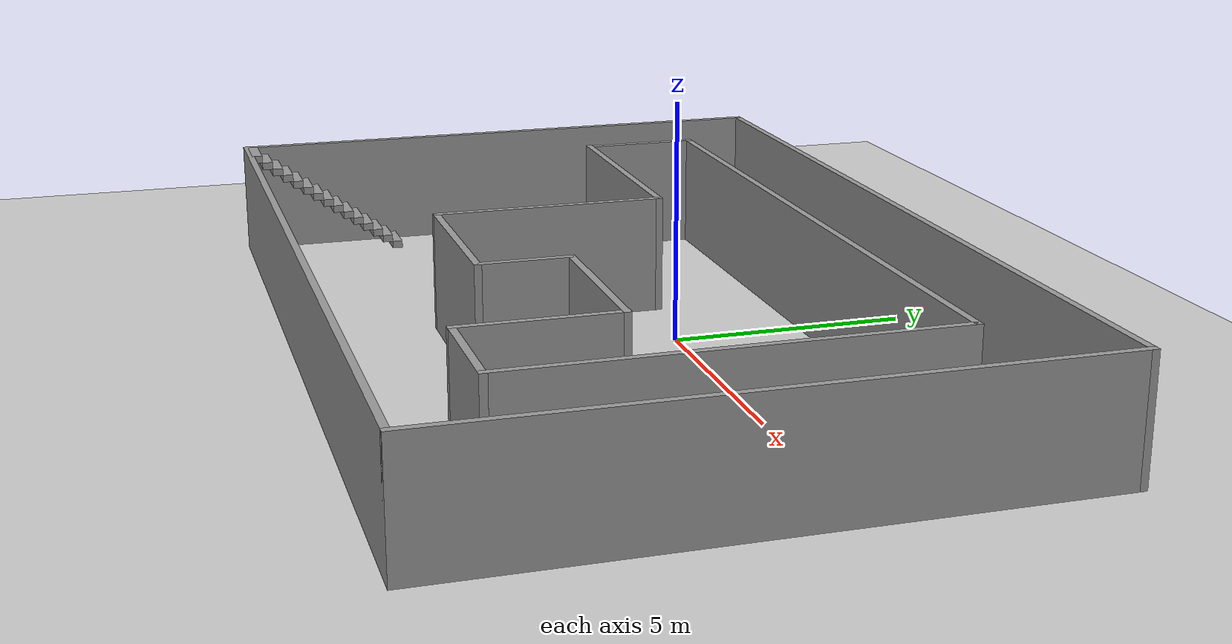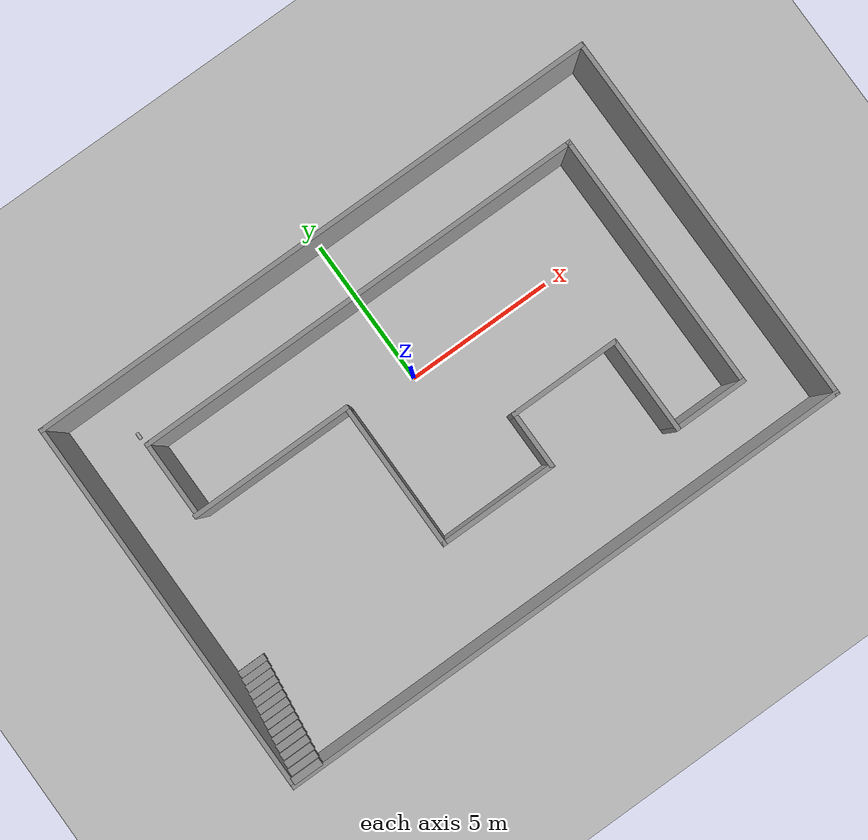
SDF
<sdf version="1.6">
 <world name="default">
  <light name="sun" type="directional">
   <pose>0 0 10 0 -0 0</pose>
   <diffuse>0.8 0.8 0.8 1</diffuse>
   <specular>0.1 0.1 0.1 1</specular>
   <attenuation>
    <range>1000</range>
    <constant>0.9</constant>
    <linear>0.01</linear>
    <quadratic>0.001</quadratic>
   </attenuation>
   <direction>-0.5 0.5 -1</direction>
  </light>
  <model name="ground_plane">
   <static>1</static>
   <link name="link">
    <collision name="collision">
     <geometry><plane><normal>0 0 1</normal><size>100 100</size></plane></geometry>
     <surface><friction><ode><mu>100</mu><mu2>50</mu2></ode></friction></surface>
    </collision>
    <visual name="visual">
     <cast_shadows>0</cast_shadows>
     <geometry><plane><normal>0 0 1</normal><size>100 100</size></plane></geometry>
     <material>
      <script><uri>file://media/materials/scripts/gazebo.material</uri><name>Gazebo/Grey</name></script>
     </material>
    </visual>
   </link>
  </model>
  <gravity>0 0 -9.8</gravity>
  <magnetic_field>6e-06 2.3e-05 -4.2e-05</magnetic_field>
  <atmosphere type="adiabatic"/>
  <physics name="default_physics" default="0" type="ode">
   <max_step_size>0.001</max_step_size>
   <real_time_factor>1</real_time_factor>
   <real_time_update_rate>1000</real_time_update_rate>
  </physics>
  <scene><ambient>0.4 0.4 0.4 1</ambient><background>0.7 0.7 0.7 1</background><shadows>1</shadows></scene>
  <spherical_coordinates>
   <surface_model>EARTH_WGS84</surface_model>
   <latitude_deg>0</latitude_deg>
   <longitude_deg>0</longitude_deg>
   <elevation>0</elevation>
   <heading_deg>0</heading_deg>
  </spherical_coordinates>
  <model name="cloister">
   <pose>-0.021965 -1.3617 0 0 -0 0</pose>
   <link name="Stairs_1">
    <visual name="Stairs_1_Visual_0">
     <pose>-9.13664 -2.89839 0.083333 0 -0 0</pose>
     <geometry><box><size>1 0.233333 0.166667</size></box></geometry>
     <material>
      <script><uri>file://media/materials/scripts/gazebo.material</uri><name>Gazebo/Grey</name></script>
      <ambient>1 1 1 1</ambient>
     </material>
    </visual>
    <collision name="Stairs_1_Collision_0">
     <geometry><box><size>1 0.233333 0.166667</size></box></geometry>
     <pose>-9.13664 -2.89839 0.083333 0 -0 0</pose>
    </collision>
    <visual name="Stairs_1_Visual_1">
     <pose>-9.13664 -3.13172 0.25 0 -0 0</pose>
     <geometry><box><size>1 0.233333 0.166667</size></box></geometry>
     <material>
      <script><uri>file://media/materials/scripts/gazebo.material</uri><name>Gazebo/Grey</name></script>
      <ambient>1 1 1 1</ambient>
     </material>
    </visual>
    <collision name="Stairs_1_Collision_1">
     <geometry><box><size>1 0.233333 0.166667</size></box></geometry>
     <pose>-9.13664 -3.13172 0.25 0 -0 0</pose>
    </collision>
    <visual name="Stairs_1_Visual_2">
     <pose>-9.13664 -3.36505 0.416667 0 -0 0</pose>
     <geometry><box><size>1 0.233333 0.166667</size></box></geometry>
     <material>
      <script><uri>file://media/materials/scripts/gazebo.material</uri><name>Gazebo/Grey</name></script>
      <ambient>1 1 1 1</ambient>
     </material>
    </visual>
    <collision name="Stairs_1_Collision_2">
     <geometry><box><size>1 0.233333 0.166667</size></box></geometry>
     <pose>-9.13664 -3.36505 0.416667 0 -0 0</pose>
    </collision>
    <visual name="Stairs_1_Visual_3">
     <pose>-9.13664 -3.59839 0.583333 0 -0 0</pose>
     <geometry><box><size>1 0.233333 0.166667</size></box></geometry>
     <material>
      <script><uri>file://media/materials/scripts/gazebo.material</uri><name>Gazebo/Grey</name></script>
      <ambient>1 1 1 1</ambient>
     </material>
    </visual>
    <collision name="Stairs_1_Collision_3">
     <geometry><box><size>1 0.233333 0.166667</size></box></geometry>
     <pose>-9.13664 -3.59839 0.583333 0 -0 0</pose>
    </collision>
    <visual name="Stairs_1_Visual_4">
     <pose>-9.13664 -3.83172 0.75 0 -0 0</pose>
     <geometry><box><size>1 0.233333 0.166667</size></box></geometry>
     <material>
      <script><uri>file://media/materials/scripts/gazebo.material</uri><name>Gazebo/Grey</name></script>
      <ambient>1 1 1 1</ambient>
     </material>
    </visual>
    <collision name="Stairs_1_Collision_4">
     <geometry><box><size>1 0.233333 0.166667</size></box></geometry>
     <pose>-9.13664 -3.83172 0.75 0 -0 0</pose>
    </collision>
    <visual name="Stairs_1_Visual_5">
     <pose>-9.13664 -4.06506 0.916667 0 -0 0</pose>
     <geometry><box><size>1 0.233333 0.166667</size></box></geometry>
     <material>
      <script><uri>file://media/materials/scripts/gazebo.material</uri><name>Gazebo/Grey</name></script>
      <ambient>1 1 1 1</ambient>
     </material>
    </visual>
    <collision name="Stairs_1_Collision_5">
     <geometry><box><size>1 0.233333 0.166667</size></box></geometry>
     <pose>-9.13664 -4.06506 0.916667 0 -0 0</pose>
    </collision>
    <visual name="Stairs_1_Visual_6">
     <pose>-9.13664 -4.29839 1.08333 0 -0 0</pose>
     <geometry><box><size>1 0.233333 0.166667</size></box></geometry>
     <material>
      <script><uri>file://media/materials/scripts/gazebo.material</uri><name>Gazebo/Grey</name></script>
      <ambient>1 1 1 1</ambient>
     </material>
    </visual>
    <collision name="Stairs_1_Collision_6">
     <geometry><box><size>1 0.233333 0.166667</size></box></geometry>
     <pose>-9.13664 -4.29839 1.08333 0 -0 0</pose>
    </collision>
    <visual name="Stairs_1_Visual_7">
     <pose>-9.13664 -4.53172 1.25 0 -0 0</pose>
     <geometry><box><size>1 0.233333 0.166667</size></box></geometry>
     <material>
      <script><uri>file://media/materials/scripts/gazebo.material</uri><name>Gazebo/Grey</name></script>
      <ambient>1 1 1 1</ambient>
     </material>
    </visual>
    <collision name="Stairs_1_Collision_7">
     <geometry><box><size>1 0.233333 0.166667</size></box></geometry>
     <pose>-9.13664 -4.53172 1.25 0 -0 0</pose>
    </collision>
    <visual name="Stairs_1_Visual_8">
     <pose>-9.13664 -4.76506 1.41667 0 -0 0</pose>
     <geometry><box><size>1 0.233333 0.166667</size></box></geometry>
     <material>
      <script><uri>file://media/materials/scripts/gazebo.material</uri><name>Gazebo/Grey</name></script>
      <ambient>1 1 1 1</ambient>
     </material>
    </visual>
    <collision name="Stairs_1_Collision_8">
     <geometry><box><size>1 0.233333 0.166667</size></box></geometry>
     <pose>-9.13664 -4.76506 1.41667 0 -0 0</pose>
    </collision>
    <visual name="Stairs_1_Visual_9">
     <pose>-9.13664 -4.99839 1.58333 0 -0 0</pose>
     <geometry><box><size>1 0.233333 0.166667</size></box></geometry>
     <material>
      <script><uri>file://media/materials/scripts/gazebo.material</uri><name>Gazebo/Grey</name></script>
      <ambient>1 1 1 1</ambient>
     </material>
    </visual>
    <collision name="Stairs_1_Collision_9">
     <geometry><box><size>1 0.233333 0.166667</size></box></geometry>
     <pose>-9.13664 -4.99839 1.58333 0 -0 0</pose>
    </collision>
    <visual name="Stairs_1_Visual_10">
     <pose>-9.13664 -5.23172 1.75 0 -0 0</pose>
     <geometry><box><size>1 0.233333 0.166667</size></box></geometry>
     <material>
      <script><uri>file://media/materials/scripts/gazebo.material</uri><name>Gazebo/Grey</name></script>
      <ambient>1 1 1 1</ambient>
     </material>
    </visual>
    <collision name="Stairs_1_Collision_10">
     <geometry><box><size>1 0.233333 0.166667</size></box></geometry>
     <pose>-9.13664 -5.23172 1.75 0 -0 0</pose>
    </collision>
    <visual name="Stairs_1_Visual_11">
     <pose>-9.13664 -5.46506 1.91667 0 -0 0</pose>
     <geometry><box><size>1 0.233333 0.166667</size></box></geometry>
     <material>
      <script><uri>file://media/materials/scripts/gazebo.material</uri><name>Gazebo/Grey</name></script>
      <ambient>1 1 1 1</ambient>
     </material>
    </visual>
    <collision name="Stairs_1_Collision_11">
     <geometry><box><size>1 0.233333 0.166667</size></box></geometry>
     <pose>-9.13664 -5.46506 1.91667 0 -0 0</pose>
    </collision>
    <visual name="Stairs_1_Visual_12">
     <pose>-9.13664 -5.69839 2.08333 0 -0 0</pose>
     <geometry><box><size>1 0.233333 0.166667</size></box></geometry>
     <material>
      <script><uri>file://media/materials/scripts/gazebo.material</uri><name>Gazebo/Grey</name></script>
      <ambient>1 1 1 1</ambient>
     </material>
    </visual>
    <collision name="Stairs_1_Collision_12">
     <geometry><box><size>1 0.233333 0.166667</size></box></geometry>
     <pose>-9.13664 -5.69839 2.08333 0 -0 0</pose>
    </collision>
    <visual name="Stairs_1_Visual_13">
     <pose>-9.13664 -5.93172 2.25 0 -0 0</pose>
     <geometry><box><size>1 0.233333 0.166667</size></box></geometry>
     <material>
      <script><uri>file://media/materials/scripts/gazebo.material</uri><name>Gazebo/Grey</name></script>
      <ambient>1 1 1 1</ambient>
     </material>
    </visual>
    <collision name="Stairs_1_Collision_13">
     <geometry><box><size>1 0.233333 0.166667</size></box></geometry>
     <pose>-9.13664 -5.93172 2.25 0 -0 0</pose>
    </collision>
    <visual name="Stairs_1_Visual_14">
     <pose>-9.13664 -6.16505 2.41667 0 -0 0</pose>
     <geometry><box><size>1 0.233333 0.166667</size></box></geometry>
     <material>
      <script><uri>file://media/materials/scripts/gazebo.material</uri><name>Gazebo/Grey</name></script>
      <ambient>1 1 1 1</ambient>
     </material>
    </visual>
    <collision name="Stairs_1_Collision_14">
     <geometry><box><size>1 0.233333 0.166667</size></box></geometry>
     <pose>-9.13664 -6.16505 2.41667 0 -0 0</pose>
    </collision>
   </link>
   <link name="Wall_0">
    <collision name="Wall_0_Collision">
     <geometry><box><size>19.5 0.15 2.5</size></box></geometry>
     <pose>0 0 1.25 0 -0 0</pose>
    </collision>
    <visual name="Wall_0_Visual">
     <pose>0 0 1.25 0 -0 0</pose>
     <geometry><box><size>19.5 0.15 2.5</size></box></geometry>
     <material>
      <script><uri>file://media/materials/scripts/gazebo.material</uri><name>Gazebo/Grey</name></script>
      <ambient>1 1 1 1</ambient>
     </material>
    </visual>
    <pose>0 6.3 0 0 -0 3.14159</pose>
   </link>
   <link name="Wall_1">
    <collision name="Wall_1_Collision">
     <geometry><box><size>12.75 0.15 2.5</size></box></geometry>
     <pose>0 0 1.25 0 -0 0</pose>
    </collision>
    <visual name="Wall_1_Visual">
     <pose>0 0 1.25 0 -0 0</pose>
     <geometry><box><size>12.75 0.15 2.5</size></box></geometry>
     <material>
      <script><uri>file://media/materials/scripts/gazebo.material</uri><name>Gazebo/Grey</name></script>
      <ambient>1 1 1 1</ambient>
     </material>
    </visual>
    <pose>-9.675 0 0 0 0 -1.5708</pose>
   </link>
   <link name="Wall_10">
    <collision name="Wall_10_Collision">
     <geometry><box><size>3.25 0.15 2.5</size></box></geometry>
     <pose>0 0 1.25 0 -0 0</pose>
    </collision>
    <visual name="Wall_10_Visual">
     <pose>0 0 1.25 0 -0 0</pose>
     <geometry><box><size>3.25 0.15 2.5</size></box></geometry>
     <material>
      <script><uri>file://media/materials/scripts/gazebo.material</uri><name>Gazebo/Grey</name></script>
      <ambient>1 1 1 1</ambient>
     </material>
    </visual>
    <pose>5.32107 -2.87802 0 0 -0 1.5708</pose>
   </link>
   <link name="Wall_11">
    <collision name="Wall_11_Collision">
     <geometry><box><size>3.75 0.15 2.5</size></box></geometry>
     <pose>0 0 1.25 0 -0 0</pose>
    </collision>
    <visual name="Wall_11_Visual">
     <pose>0 0 1.25 0 -0 0</pose>
     <geometry><box><size>3.75 0.15 2.5</size></box></geometry>
     <material>
      <script><uri>file://media/materials/scripts/gazebo.material</uri><name>Gazebo/Grey</name></script>
      <ambient>1 1 1 1</ambient>
     </material>
    </visual>
    <pose>3.52107 -1.32802 0 0 -0 3.14159</pose>
   </link>
   <link name="Wall_12">
    <collision name="Wall_12_Collision">
     <geometry><box><size>2 0.15 2.5</size></box></geometry>
     <pose>0 0 1.25 0 -0 0</pose>
    </collision>
    <visual name="Wall_12_Visual">
     <pose>0 0 1.25 0 -0 0</pose>
     <geometry><box><size>2 0.15 2.5</size></box></geometry>
     <material>
      <script><uri>file://media/materials/scripts/gazebo.material</uri><name>Gazebo/Grey</name></script>
      <ambient>1 1 1 1</ambient>
     </material>
    </visual>
    <pose>1.72107 -2.25302 0 0 0 -1.5708</pose>
   </link>
   <link name="Wall_13">
    <collision name="Wall_13_Collision">
     <geometry><box><size>4 0.15 2.5</size></box></geometry>
     <pose>0 0 1.25 0 -0 0</pose>
    </collision>
    <visual name="Wall_13_Visual">
     <pose>0 0 1.25 0 -0 0</pose>
     <geometry><box><size>4 0.15 2.5</size></box></geometry>
     <material>
      <script><uri>file://media/materials/scripts/gazebo.material</uri><name>Gazebo/Grey</name></script>
      <ambient>1 1 1 1</ambient>
     </material>
    </visual>
    <pose>-0.203928 -3.17802 0 0 -0 3.14159</pose>
   </link>
   <link name="Wall_14">
    <collision name="Wall_14_Collision">
     <geometry><box><size>5 0.15 2.5</size></box></geometry>
     <pose>0 0 1.25 0 -0 0</pose>
    </collision>
    <visual name="Wall_14_Visual">
     <pose>0 0 1.25 0 -0 0</pose>
     <geometry><box><size>5 0.15 2.5</size></box></geometry>
     <material>
      <script><uri>file://media/materials/scripts/gazebo.material</uri><name>Gazebo/Grey</name></script>
      <ambient>1 1 1 1</ambient>
     </material>
    </visual>
    <pose>-2.12893 -0.753016 0 0 -0 1.5708</pose>
   </link>
   <link name="Wall_16">
    <collision name="Wall_16_Collision">
     <geometry><box><size>2.5 0.15 2.5</size></box></geometry>
     <pose>0 0 1.25 0 -0 0</pose>
    </collision>
    <visual name="Wall_16_Visual">
     <pose>0 0 1.25 0 -0 0</pose>
     <geometry><box><size>2.5 0.15 2.5</size></box></geometry>
     <material>
      <script><uri>file://media/materials/scripts/gazebo.material</uri><name>Gazebo/Grey</name></script>
      <ambient>1 1 1 1</ambient>
     </material>
    </visual>
    <pose>-7.42893 2.99698 0 0 -0 1.5708</pose>
   </link>
   <link name="Wall_18">
    <collision name="Wall_18_Collision">
     <geometry><box><size>5.5 0.15 2.5</size></box></geometry>
     <pose>0 0 1.25 0 -0 0</pose>
    </collision>
    <visual name="Wall_18_Visual">
     <pose>0 0 1.25 0 -0 0</pose>
     <geometry><box><size>5.5 0.15 2.5</size></box></geometry>
     <material>
      <script><uri>file://media/materials/scripts/gazebo.material</uri><name>Gazebo/Grey</name></script>
      <ambient>1 1 1 1</ambient>
     </material>
    </visual>
    <pose>-4.80393 1.67198 0 0 -0 3.14159</pose>
   </link>
   <link name="Wall_2">
    <collision name="Wall_2_Collision">
     <geometry><box><size>19.5 0.15 2.5</size></box></geometry>
     <pose>0 0 1.25 0 -0 0</pose>
    </collision>
    <visual name="Wall_2_Visual">
     <pose>0 0 1.25 0 -0 0</pose>
     <geometry><box><size>19.5 0.15 2.5</size></box></geometry>
     <material>
      <script><uri>file://media/materials/scripts/gazebo.material</uri><name>Gazebo/Grey</name></script>
      <ambient>1 1 1 1</ambient>
     </material>
    </visual>
    <pose>0 -6.3 0 0 -0 0</pose>
   </link>
   <link name="Wall_3">
    <collision name="Wall_3_Collision">
     <geometry><box><size>12.75 0.15 2.5</size></box></geometry>
     <pose>0 0 1.25 0 -0 0</pose>
    </collision>
    <visual name="Wall_3_Visual">
     <pose>0 0 1.25 0 -0 0</pose>
     <geometry><box><size>12.75 0.15 2.5</size></box></geometry>
     <material>
      <script><uri>file://media/materials/scripts/gazebo.material</uri><name>Gazebo/Grey</name></script>
      <ambient>1 1 1 1</ambient>
     </material>
    </visual>
    <pose>9.675 0 0 0 -0 1.5708</pose>
   </link>
   <link name="Wall_7">
    <collision name="Wall_7_Collision">
     <geometry><box><size>15.25 0.15 2.5</size></box></geometry>
     <pose>0 0 1.25 0 -0 0</pose>
    </collision>
    <visual name="Wall_7_Visual">
     <pose>0 0 1.25 0 -0 0</pose>
     <geometry><box><size>15.25 0.15 2.5</size></box></geometry>
     <material>
      <script><uri>file://media/materials/scripts/gazebo.material</uri><name>Gazebo/Grey</name></script>
      <ambient>1 1 1 1</ambient>
     </material>
    </visual>
    <pose>0.121072 4.17198 0 0 -0 0</pose>
   </link>
   <link name="Wall_8">
    <collision name="Wall_8_Collision">
     <geometry><box><size>8.75 0.15 2.5</size></box></geometry>
     <pose>0 0 1.25 0 -0 0</pose>
    </collision>
    <visual name="Wall_8_Visual">
     <pose>0 0 1.25 0 -0 0</pose>
     <geometry><box><size>8.75 0.15 2.5</size></box></geometry>
     <material>
      <script><uri>file://media/materials/scripts/gazebo.material</uri><name>Gazebo/Grey</name></script>
      <ambient>1 1 1 1</ambient>
     </material>
    </visual>
    <pose>7.67107 -0.128016 0 0 0 -1.5708</pose>
   </link>
   <link name="Wall_9">
    <collision name="Wall_9_Collision">
     <geometry><box><size>2.5 0.15 2.5</size></box></geometry>
     <pose>0 0 1.25 0 -0 0</pose>
    </collision>
    <visual name="Wall_9_Visual">
     <pose>0 0 1.25 0 -0 0</pose>
     <geometry><box><size>2.5 0.15 2.5</size></box></geometry>
     <material>
      <script><uri>file://media/materials/scripts/gazebo.material</uri><name>Gazebo/Grey</name></script>
      <ambient>1 1 1 1</ambient>
     </material>
    </visual>
    <pose>6.49607 -4.42802 0 0 -0 3.14159</pose>
   </link>
   <static>1</static>
  </model>
  <model name="beer_0">
   <link name="link">
    <pose>0 0 0.115 0 -0 0</pose>
    <inertial>
     <mass>0.39</mass>
     <inertia><ixx>0.00058</ixx><ixy>0</ixy><ixz>0</ixz><iyy>0.00058</iyy><iyz>0</iyz><izz>0.00019</izz></inertia>
    </inertial>
    <collision name="collision">
     <geometry><cylinder><radius>0.055</radius><length>0.23</length></cylinder></geometry>
    </collision>
    <visual name="visual">
     <geometry><cylinder><radius>0.055</radius><length>0.23</length></cylinder></geometry>
     <material>
      <script>
       <uri>model://beer/materials/scripts</uri>
       <uri>model://beer/materials/textures</uri>
       <name>Beer/Diffuse</name>
      </script>
     </material>
    </visual>
   </link>
   <pose>-7.91781 3.63191 0.055 1.57191 -1.2471 -0.001058</pose>
  </model>
 </world>
</sdf>
